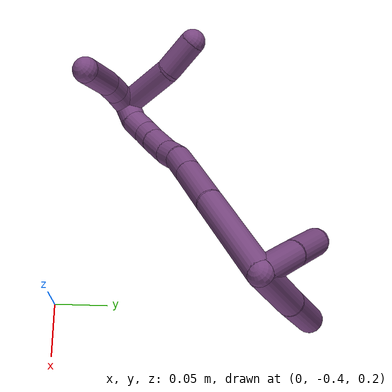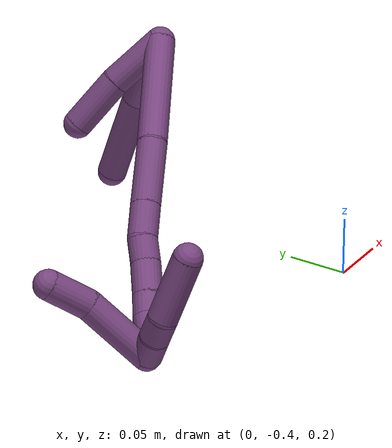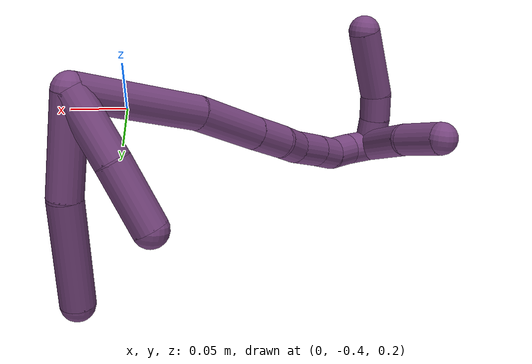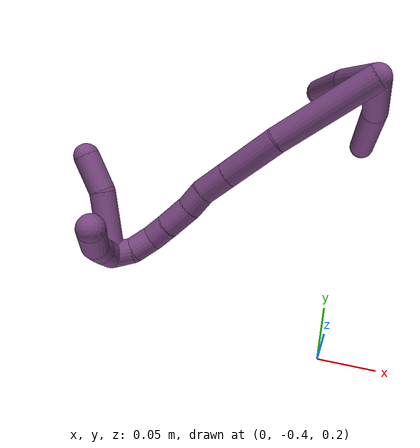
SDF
<sdf version="1.7">
 <world name="default">
  <model name="20">
   <static>0</static>
   <link name="20">
    <collision name="collision-cylinder-e_1_2_8">
     <pose>0.000431 -0.002257 -0.035427 3.07798 0.012152 0.377401</pose>
     <geometry><cylinder><radius>0.0125</radius><length>0.071003</length></cylinder></geometry>
     <surface>
      <friction><ode><mu>1.16</mu><mu2>1.16</mu2><slip1>0</slip1><slip2>0</slip2></ode></friction>
      <contact><ode><kp>1e+06</kp><kd>1</kd><max_vel>0</max_vel><min_depth>0.001</min_depth></ode></contact>
     </surface>
    </collision>
    <visual name="visual-cylinder-e_1_2_8">
     <pose>0.000431 -0.002257 -0.035427 3.07798 0.012152 0.377401</pose>
     <geometry><cylinder><radius>0.0125</radius><length>0.071003</length></cylinder></geometry>
     <material><ambient>0.478431 0.278431 0.509804 1</ambient></material>
    </visual>
    <collision name="collision-cylinder-e_2_8_6">
     <pose>-0.003652 -0.011763 -0.109418 2.95578 -0.114558 -1.10336</pose>
     <geometry><cylinder><radius>0.0125</radius><length>0.078997</length></cylinder></geometry>
     <surface>
      <friction><ode><mu>1.16</mu><mu2>1.16</mu2><slip1>0</slip1><slip2>0</slip2></ode></friction>
      <contact><ode><kp>1e+06</kp><kd>1</kd><max_vel>0</max_vel><min_depth>0.001</min_depth></ode></contact>
     </surface>
    </collision>
    <visual name="visual-cylinder-e_2_8_6">
     <pose>-0.003652 -0.011763 -0.109418 2.95578 -0.114558 -1.10336</pose>
     <geometry><cylinder><radius>0.0125</radius><length>0.078997</length></cylinder></geometry>
     <material><ambient>0.478431 0.278431 0.509804 1</ambient></material>
    </visual>
    <collision name="collision-cylinder-e_1_2_9">
     <pose>-0.015328 0.003104 -0.020252 -2.9895 -0.642301 2.69129</pose>
     <geometry><cylinder><radius>0.0125</radius><length>0.051176</length></cylinder></geometry>
     <surface>
      <friction><ode><mu>1.16</mu><mu2>1.16</mu2><slip1>0</slip1><slip2>0</slip2></ode></friction>
      <contact><ode><kp>1e+06</kp><kd>1</kd><max_vel>0</max_vel><min_depth>0.001</min_depth></ode></contact>
     </surface>
    </collision>
    <visual name="visual-cylinder-e_1_2_9">
     <pose>-0.015328 0.003104 -0.020252 -2.9895 -0.642301 2.69129</pose>
     <geometry><cylinder><radius>0.0125</radius><length>0.051176</length></cylinder></geometry>
     <material><ambient>0.478431 0.278431 0.509804 1</ambient></material>
    </visual>
    <collision name="collision-cylinder-e_2_9_5">
     <pose>-0.04417 0.006543 -0.060833 -3.12511 -0.586619 3.08704</pose>
     <geometry><cylinder><radius>0.0125</radius><length>0.048824</length></cylinder></geometry>
     <surface>
      <friction><ode><mu>1.16</mu><mu2>1.16</mu2><slip1>0</slip1><slip2>0</slip2></ode></friction>
      <contact><ode><kp>1e+06</kp><kd>1</kd><max_vel>0</max_vel><min_depth>0.001</min_depth></ode></contact>
     </surface>
    </collision>
    <visual name="visual-cylinder-e_2_9_5">
     <pose>-0.04417 0.006543 -0.060833 -3.12511 -0.586619 3.08704</pose>
     <geometry><cylinder><radius>0.0125</radius><length>0.048824</length></cylinder></geometry>
     <material><ambient>0.478431 0.278431 0.509804 1</ambient></material>
    </visual>
    <collision name="collision-cylinder-e_1_2_10">
     <pose>-0.036021 -0.033992 -0.009172 1.83436 -0.796814 -1.005</pose>
     <geometry><cylinder><radius>0.0125</radius><length>0.100739</length></cylinder></geometry>
     <surface>
      <friction><ode><mu>1.16</mu><mu2>1.16</mu2><slip1>0</slip1><slip2>0</slip2></ode></friction>
      <contact><ode><kp>1e+06</kp><kd>1</kd><max_vel>0</max_vel><min_depth>0.001</min_depth></ode></contact>
     </surface>
    </collision>
    <visual name="visual-cylinder-e_1_2_10">
     <pose>-0.036021 -0.033992 -0.009172 1.83436 -0.796814 -1.005</pose>
     <geometry><cylinder><radius>0.0125</radius><length>0.100739</length></cylinder></geometry>
     <material><ambient>0.478431 0.278431 0.509804 1</ambient></material>
    </visual>
    <collision name="collision-cylinder-e_2_10_11">
     <pose>-0.091335 -0.086709 -0.027074 2.00702 -0.751186 -1.10837</pose>
     <geometry><cylinder><radius>0.0125</radius><length>0.056536</length></cylinder></geometry>
     <surface>
      <friction><ode><mu>1.16</mu><mu2>1.16</mu2><slip1>0</slip1><slip2>0</slip2></ode></friction>
      <contact><ode><kp>1e+06</kp><kd>1</kd><max_vel>0</max_vel><min_depth>0.001</min_depth></ode></contact>
     </surface>
    </collision>
    <visual name="visual-cylinder-e_2_10_11">
     <pose>-0.091335 -0.086709 -0.027074 2.00702 -0.751186 -1.10837</pose>
     <geometry><cylinder><radius>0.0125</radius><length>0.056536</length></cylinder></geometry>
     <material><ambient>0.478431 0.278431 0.509804 1</ambient></material>
    </visual>
    <collision name="collision-cylinder-e_3_11_12">
     <pose>-0.120717 -0.115376 -0.040111 1.97966 -0.749857 -1.07997</pose>
     <geometry><cylinder><radius>0.0125</radius><length>0.029609</length></cylinder></geometry>
     <surface>
      <friction><ode><mu>1.16</mu><mu2>1.16</mu2><slip1>0</slip1><slip2>0</slip2></ode></friction>
      <contact><ode><kp>1e+06</kp><kd>1</kd><max_vel>0</max_vel><min_depth>0.001</min_depth></ode></contact>
     </surface>
    </collision>
    <visual name="visual-cylinder-e_3_11_12">
     <pose>-0.120717 -0.115376 -0.040111 1.97966 -0.749857 -1.07997</pose>
     <geometry><cylinder><radius>0.0125</radius><length>0.029609</length></cylinder></geometry>
     <material><ambient>0.478431 0.278431 0.509804 1</ambient></material>
    </visual>
    <collision name="collision-cylinder-e_4_12_13">
     <pose>-0.13609 -0.133933 -0.04772 1.93673 -0.519947 -0.738118</pose>
     <geometry><cylinder><radius>0.0125</radius><length>0.021264</length></cylinder></geometry>
     <surface>
      <friction><ode><mu>1.16</mu><mu2>1.16</mu2><slip1>0</slip1><slip2>0</slip2></ode></friction>
      <contact><ode><kp>1e+06</kp><kd>1</kd><max_vel>0</max_vel><min_depth>0.001</min_depth></ode></contact>
     </surface>
    </collision>
    <visual name="visual-cylinder-e_4_12_13">
     <pose>-0.13609 -0.133933 -0.04772 1.93673 -0.519947 -0.738118</pose>
     <geometry><cylinder><radius>0.0125</radius><length>0.021264</length></cylinder></geometry>
     <material><ambient>0.478431 0.278431 0.509804 1</ambient></material>
    </visual>
    <collision name="collision-cylinder-e_5_13_14">
     <pose>-0.1501 -0.15356 -0.053925 1.82861 -0.653955 -0.829303</pose>
     <geometry><cylinder><radius>0.0125</radius><length>0.028695</length></cylinder></geometry>
     <surface>
      <friction><ode><mu>1.16</mu><mu2>1.16</mu2><slip1>0</slip1><slip2>0</slip2></ode></friction>
      <contact><ode><kp>1e+06</kp><kd>1</kd><max_vel>0</max_vel><min_depth>0.001</min_depth></ode></contact>
     </surface>
    </collision>
    <visual name="visual-cylinder-e_5_13_14">
     <pose>-0.1501 -0.15356 -0.053925 1.82861 -0.653955 -0.829303</pose>
     <geometry><cylinder><radius>0.0125</radius><length>0.028695</length></cylinder></geometry>
     <material><ambient>0.478431 0.278431 0.509804 1</ambient></material>
    </visual>
    <collision name="collision-cylinder-e_6_14_15">
     <pose>-0.165223 -0.172025 -0.059098 1.86634 -0.687278 -0.899914</pose>
     <geometry><cylinder><radius>0.0125</radius><length>0.02016</length></cylinder></geometry>
     <surface>
      <friction><ode><mu>1.16</mu><mu2>1.16</mu2><slip1>0</slip1><slip2>0</slip2></ode></friction>
      <contact><ode><kp>1e+06</kp><kd>1</kd><max_vel>0</max_vel><min_depth>0.001</min_depth></ode></contact>
     </surface>
    </collision>
    <visual name="visual-cylinder-e_6_14_15">
     <pose>-0.165223 -0.172025 -0.059098 1.86634 -0.687278 -0.899914</pose>
     <geometry><cylinder><radius>0.0125</radius><length>0.02016</length></cylinder></geometry>
     <material><ambient>0.478431 0.278431 0.509804 1</ambient></material>
    </visual>
    <collision name="collision-cylinder-e_7_15_16">
     <pose>-0.17868 -0.187762 -0.060487 1.46491 -0.703177 -0.637328</pose>
     <geometry><cylinder><radius>0.0125</radius><length>0.02184</length></cylinder></geometry>
     <surface>
      <friction><ode><mu>1.16</mu><mu2>1.16</mu2><slip1>0</slip1><slip2>0</slip2></ode></friction>
      <contact><ode><kp>1e+06</kp><kd>1</kd><max_vel>0</max_vel><min_depth>0.001</min_depth></ode></contact>
     </surface>
    </collision>
    <visual name="visual-cylinder-e_7_15_16">
     <pose>-0.17868 -0.187762 -0.060487 1.46491 -0.703177 -0.637328</pose>
     <geometry><cylinder><radius>0.0125</radius><length>0.02184</length></cylinder></geometry>
     <material><ambient>0.478431 0.278431 0.509804 1</ambient></material>
    </visual>
    <collision name="collision-cylinder-e_8_16_1">
     <pose>-0.194787 -0.2013 -0.058042 1.28147 -1.02583 -0.795192</pose>
     <geometry><cylinder><radius>0.0125</radius><length>0.021157</length></cylinder></geometry>
     <surface>
      <friction><ode><mu>1.16</mu><mu2>1.16</mu2><slip1>0</slip1><slip2>0</slip2></ode></friction>
      <contact><ode><kp>1e+06</kp><kd>1</kd><max_vel>0</max_vel><min_depth>0.001</min_depth></ode></contact>
     </surface>
    </collision>
    <visual name="visual-cylinder-e_8_16_1">
     <pose>-0.194787 -0.2013 -0.058042 1.28147 -1.02583 -0.795192</pose>
     <geometry><cylinder><radius>0.0125</radius><length>0.021157</length></cylinder></geometry>
     <material><ambient>0.478431 0.278431 0.509804 1</ambient></material>
    </visual>
    <collision name="collision-cylinder-e_1_1_17">
     <pose>-0.214705 -0.178889 -0.047051 -1.24243 -0.356081 0.256181</pose>
     <geometry><cylinder><radius>0.0125</radius><length>0.06237</length></cylinder></geometry>
     <surface>
      <friction><ode><mu>1.16</mu><mu2>1.16</mu2><slip1>0</slip1><slip2>0</slip2></ode></friction>
      <contact><ode><kp>1e+06</kp><kd>1</kd><max_vel>0</max_vel><min_depth>0.001</min_depth></ode></contact>
     </surface>
    </collision>
    <visual name="visual-cylinder-e_1_1_17">
     <pose>-0.214705 -0.178889 -0.047051 -1.24243 -0.356081 0.256181</pose>
     <geometry><cylinder><radius>0.0125</radius><length>0.06237</length></cylinder></geometry>
     <material><ambient>0.478431 0.278431 0.509804 1</ambient></material>
    </visual>
    <collision name="collision-cylinder-e_2_17_4">
     <pose>-0.237093 -0.137126 -0.032863 -1.24502 -0.658731 0.481143</pose>
     <geometry><cylinder><radius>0.0125</radius><length>0.03763</length></cylinder></geometry>
     <surface>
      <friction><ode><mu>1.16</mu><mu2>1.16</mu2><slip1>0</slip1><slip2>0</slip2></ode></friction>
      <contact><ode><kp>1e+06</kp><kd>1</kd><max_vel>0</max_vel><min_depth>0.001</min_depth></ode></contact>
     </surface>
    </collision>
    <visual name="visual-cylinder-e_2_17_4">
     <pose>-0.237093 -0.137126 -0.032863 -1.24502 -0.658731 0.481143</pose>
     <geometry><cylinder><radius>0.0125</radius><length>0.03763</length></cylinder></geometry>
     <material><ambient>0.478431 0.278431 0.509804 1</ambient></material>
    </visual>
    <collision name="collision-cylinder-e_1_1_18">
     <pose>-0.204421 -0.20576 -0.044757 -0.067844 -0.05 0.001697</pose>
     <geometry><cylinder><radius>0.0125</radius><length>0.023522</length></cylinder></geometry>
     <surface>
      <friction><ode><mu>1.16</mu><mu2>1.16</mu2><slip1>0</slip1><slip2>0</slip2></ode></friction>
      <contact><ode><kp>1e+06</kp><kd>1</kd><max_vel>0</max_vel><min_depth>0.001</min_depth></ode></contact>
     </surface>
    </collision>
    <visual name="visual-cylinder-e_1_1_18">
     <pose>-0.204421 -0.20576 -0.044757 -0.067844 -0.05 0.001697</pose>
     <geometry><cylinder><radius>0.0125</radius><length>0.023522</length></cylinder></geometry>
     <material><ambient>0.478431 0.278431 0.509804 1</ambient></material>
    </visual>
    <collision name="collision-cylinder-e_2_18_19">
     <pose>-0.204049 -0.203675 -0.022619 -0.123025 0.091194 -0.005621</pose>
     <geometry><cylinder><radius>0.0125</radius><length>0.021085</length></cylinder></geometry>
     <surface>
      <friction><ode><mu>1.16</mu><mu2>1.16</mu2><slip1>0</slip1><slip2>0</slip2></ode></friction>
      <contact><ode><kp>1e+06</kp><kd>1</kd><max_vel>0</max_vel><min_depth>0.001</min_depth></ode></contact>
     </surface>
    </collision>
    <visual name="visual-cylinder-e_2_18_19">
     <pose>-0.204049 -0.203675 -0.022619 -0.123025 0.091194 -0.005621</pose>
     <geometry><cylinder><radius>0.0125</radius><length>0.021085</length></cylinder></geometry>
     <material><ambient>0.478431 0.278431 0.509804 1</ambient></material>
    </visual>
    <collision name="collision-cylinder-e_3_19_3">
     <pose>-0.194747 -0.196014 0.01343 -0.243708 0.305922 -0.037754</pose>
     <geometry><cylinder><radius>0.0125</radius><length>0.055393</length></cylinder></geometry>
     <surface>
      <friction><ode><mu>1.16</mu><mu2>1.16</mu2><slip1>0</slip1><slip2>0</slip2></ode></friction>
      <contact><ode><kp>1e+06</kp><kd>1</kd><max_vel>0</max_vel><min_depth>0.001</min_depth></ode></contact>
     </surface>
    </collision>
    <visual name="visual-cylinder-e_3_19_3">
     <pose>-0.194747 -0.196014 0.01343 -0.243708 0.305922 -0.037754</pose>
     <geometry><cylinder><radius>0.0125</radius><length>0.055393</length></cylinder></geometry>
     <material><ambient>0.478431 0.278431 0.509804 1</ambient></material>
    </visual>
    <collision name="collision-sphere-3">
     <pose>-0.186406 -0.189641 0.03906 0 -0 0</pose>
     <geometry><sphere><radius>0.0125</radius></sphere></geometry>
     <surface>
      <friction><ode><mu>1.16</mu><mu2>1.16</mu2><slip1>0</slip1><slip2>0</slip2></ode></friction>
      <contact><ode><kp>1e+06</kp><kd>1</kd><max_vel>0</max_vel><min_depth>0.001</min_depth></ode></contact>
     </surface>
    </collision>
    <visual name="visual-sphere-3">
     <pose>-0.186406 -0.189641 0.03906 0 -0 0</pose>
     <geometry><sphere><radius>0.0125</radius></sphere></geometry>
     <material><ambient>0.478431 0.278431 0.509804 1</ambient></material>
    </visual>
    <collision name="collision-sphere-19">
     <pose>-0.203089 -0.202387 -0.0122 0 -0 0</pose>
     <geometry><sphere><radius>0.0125</radius></sphere></geometry>
     <surface>
      <friction><ode><mu>1.16</mu><mu2>1.16</mu2><slip1>0</slip1><slip2>0</slip2></ode></friction>
      <contact><ode><kp>1e+06</kp><kd>1</kd><max_vel>0</max_vel><min_depth>0.001</min_depth></ode></contact>
     </surface>
    </collision>
    <visual name="visual-sphere-19">
     <pose>-0.203089 -0.202387 -0.0122 0 -0 0</pose>
     <geometry><sphere><radius>0.0125</radius></sphere></geometry>
     <material><ambient>0.478431 0.278431 0.509804 1</ambient></material>
    </visual>
    <collision name="collision-sphere-10">
     <pose>-0.072042 -0.067984 -0.018345 0 -0 0</pose>
     <geometry><sphere><radius>0.0125</radius></sphere></geometry>
     <surface>
      <friction><ode><mu>1.16</mu><mu2>1.16</mu2><slip1>0</slip1><slip2>0</slip2></ode></friction>
      <contact><ode><kp>1e+06</kp><kd>1</kd><max_vel>0</max_vel><min_depth>0.001</min_depth></ode></contact>
     </surface>
    </collision>
    <visual name="visual-sphere-10">
     <pose>-0.072042 -0.067984 -0.018345 0 -0 0</pose>
     <geometry><sphere><radius>0.0125</radius></sphere></geometry>
     <material><ambient>0.478431 0.278431 0.509804 1</ambient></material>
    </visual>
    <collision name="collision-sphere-5">
     <pose>-0.057683 0.006878 -0.081161 0 -0 0</pose>
     <geometry><sphere><radius>0.0125</radius></sphere></geometry>
     <surface>
      <friction><ode><mu>1.16</mu><mu2>1.16</mu2><slip1>0</slip1><slip2>0</slip2></ode></friction>
      <contact><ode><kp>1e+06</kp><kd>1</kd><max_vel>0</max_vel><min_depth>0.001</min_depth></ode></contact>
     </surface>
    </collision>
    <visual name="visual-sphere-5">
     <pose>-0.057683 0.006878 -0.081161 0 -0 0</pose>
     <geometry><sphere><radius>0.0125</radius></sphere></geometry>
     <material><ambient>0.478431 0.278431 0.509804 1</ambient></material>
    </visual>
    <collision name="collision-sphere-6">
     <pose>-0.008167 -0.019012 -0.147982 0 -0 0</pose>
     <geometry><sphere><radius>0.0125</radius></sphere></geometry>
     <surface>
      <friction><ode><mu>1.16</mu><mu2>1.16</mu2><slip1>0</slip1><slip2>0</slip2></ode></friction>
      <contact><ode><kp>1e+06</kp><kd>1</kd><max_vel>0</max_vel><min_depth>0.001</min_depth></ode></contact>
     </surface>
    </collision>
    <visual name="visual-sphere-6">
     <pose>-0.008167 -0.019012 -0.147982 0 -0 0</pose>
     <geometry><sphere><radius>0.0125</radius></sphere></geometry>
     <material><ambient>0.478431 0.278431 0.509804 1</ambient></material>
    </visual>
    <collision name="collision-sphere-9">
     <pose>-0.030656 0.006208 -0.040505 0 -0 0</pose>
     <geometry><sphere><radius>0.0125</radius></sphere></geometry>
     <surface>
      <friction><ode><mu>1.16</mu><mu2>1.16</mu2><slip1>0</slip1><slip2>0</slip2></ode></friction>
      <contact><ode><kp>1e+06</kp><kd>1</kd><max_vel>0</max_vel><min_depth>0.001</min_depth></ode></contact>
     </surface>
    </collision>
    <visual name="visual-sphere-9">
     <pose>-0.030656 0.006208 -0.040505 0 -0 0</pose>
     <geometry><sphere><radius>0.0125</radius></sphere></geometry>
     <material><ambient>0.478431 0.278431 0.509804 1</ambient></material>
    </visual>
    <collision name="collision-sphere-2">
     <geometry><sphere><radius>0.0125</radius></sphere></geometry>
     <surface>
      <friction><ode><mu>1.16</mu><mu2>1.16</mu2><slip1>0</slip1><slip2>0</slip2></ode></friction>
      <contact><ode><kp>1e+06</kp><kd>1</kd><max_vel>0</max_vel><min_depth>0.001</min_depth></ode></contact>
     </surface>
    </collision>
    <visual name="visual-sphere-2">
     <geometry><sphere><radius>0.0125</radius></sphere></geometry>
     <material><ambient>0.478431 0.278431 0.509804 1</ambient></material>
    </visual>
    <collision name="collision-sphere-8">
     <pose>0.000863 -0.004513 -0.070854 0 -0 0</pose>
     <geometry><sphere><radius>0.0125</radius></sphere></geometry>
     <surface>
      <friction><ode><mu>1.16</mu><mu2>1.16</mu2><slip1>0</slip1><slip2>0</slip2></ode></friction>
      <contact><ode><kp>1e+06</kp><kd>1</kd><max_vel>0</max_vel><min_depth>0.001</min_depth></ode></contact>
     </surface>
    </collision>
    <visual name="visual-sphere-8">
     <pose>0.000863 -0.004513 -0.070854 0 -0 0</pose>
     <geometry><sphere><radius>0.0125</radius></sphere></geometry>
     <material><ambient>0.478431 0.278431 0.509804 1</ambient></material>
    </visual>
    <collision name="collision-sphere-11">
     <pose>-0.110628 -0.105435 -0.035804 0 -0 0</pose>
     <geometry><sphere><radius>0.0125</radius></sphere></geometry>
     <surface>
      <friction><ode><mu>1.16</mu><mu2>1.16</mu2><slip1>0</slip1><slip2>0</slip2></ode></friction>
      <contact><ode><kp>1e+06</kp><kd>1</kd><max_vel>0</max_vel><min_depth>0.001</min_depth></ode></contact>
     </surface>
    </collision>
    <visual name="visual-sphere-11">
     <pose>-0.110628 -0.105435 -0.035804 0 -0 0</pose>
     <geometry><sphere><radius>0.0125</radius></sphere></geometry>
     <material><ambient>0.478431 0.278431 0.509804 1</ambient></material>
    </visual>
    <collision name="collision-sphere-12">
     <pose>-0.130807 -0.125316 -0.044418 0 -0 0</pose>
     <geometry><sphere><radius>0.0125</radius></sphere></geometry>
     <surface>
      <friction><ode><mu>1.16</mu><mu2>1.16</mu2><slip1>0</slip1><slip2>0</slip2></ode></friction>
      <contact><ode><kp>1e+06</kp><kd>1</kd><max_vel>0</max_vel><min_depth>0.001</min_depth></ode></contact>
     </surface>
    </collision>
    <visual name="visual-sphere-12">
     <pose>-0.130807 -0.125316 -0.044418 0 -0 0</pose>
     <geometry><sphere><radius>0.0125</radius></sphere></geometry>
     <material><ambient>0.478431 0.278431 0.509804 1</ambient></material>
    </visual>
    <collision name="collision-sphere-13">
     <pose>-0.141372 -0.142549 -0.051021 0 -0 0</pose>
     <geometry><sphere><radius>0.0125</radius></sphere></geometry>
     <surface>
      <friction><ode><mu>1.16</mu><mu2>1.16</mu2><slip1>0</slip1><slip2>0</slip2></ode></friction>
      <contact><ode><kp>1e+06</kp><kd>1</kd><max_vel>0</max_vel><min_depth>0.001</min_depth></ode></contact>
     </surface>
    </collision>
    <visual name="visual-sphere-13">
     <pose>-0.141372 -0.142549 -0.051021 0 -0 0</pose>
     <geometry><sphere><radius>0.0125</radius></sphere></geometry>
     <material><ambient>0.478431 0.278431 0.509804 1</ambient></material>
    </visual>
    <collision name="collision-sphere-14">
     <pose>-0.158828 -0.164571 -0.056828 0 -0 0</pose>
     <geometry><sphere><radius>0.0125</radius></sphere></geometry>
     <surface>
      <friction><ode><mu>1.16</mu><mu2>1.16</mu2><slip1>0</slip1><slip2>0</slip2></ode></friction>
      <contact><ode><kp>1e+06</kp><kd>1</kd><max_vel>0</max_vel><min_depth>0.001</min_depth></ode></contact>
     </surface>
    </collision>
    <visual name="visual-sphere-14">
     <pose>-0.158828 -0.164571 -0.056828 0 -0 0</pose>
     <geometry><sphere><radius>0.0125</radius></sphere></geometry>
     <material><ambient>0.478431 0.278431 0.509804 1</ambient></material>
    </visual>
    <collision name="collision-sphere-15">
     <pose>-0.171618 -0.179478 -0.061367 0 -0 0</pose>
     <geometry><sphere><radius>0.0125</radius></sphere></geometry>
     <surface>
      <friction><ode><mu>1.16</mu><mu2>1.16</mu2><slip1>0</slip1><slip2>0</slip2></ode></friction>
      <contact><ode><kp>1e+06</kp><kd>1</kd><max_vel>0</max_vel><min_depth>0.001</min_depth></ode></contact>
     </surface>
    </collision>
    <visual name="visual-sphere-15">
     <pose>-0.171618 -0.179478 -0.061367 0 -0 0</pose>
     <geometry><sphere><radius>0.0125</radius></sphere></geometry>
     <material><ambient>0.478431 0.278431 0.509804 1</ambient></material>
    </visual>
    <collision name="collision-sphere-16">
     <pose>-0.185741 -0.196045 -0.059606 0 -0 0</pose>
     <geometry><sphere><radius>0.0125</radius></sphere></geometry>
     <surface>
      <friction><ode><mu>1.16</mu><mu2>1.16</mu2><slip1>0</slip1><slip2>0</slip2></ode></friction>
      <contact><ode><kp>1e+06</kp><kd>1</kd><max_vel>0</max_vel><min_depth>0.001</min_depth></ode></contact>
     </surface>
    </collision>
    <visual name="visual-sphere-16">
     <pose>-0.185741 -0.196045 -0.059606 0 -0 0</pose>
     <geometry><sphere><radius>0.0125</radius></sphere></geometry>
     <material><ambient>0.478431 0.278431 0.509804 1</ambient></material>
    </visual>
    <collision name="collision-sphere-1">
     <pose>-0.203833 -0.206556 -0.056477 0 -0 0</pose>
     <geometry><sphere><radius>0.0125</radius></sphere></geometry>
     <surface>
      <friction><ode><mu>1.16</mu><mu2>1.16</mu2><slip1>0</slip1><slip2>0</slip2></ode></friction>
      <contact><ode><kp>1e+06</kp><kd>1</kd><max_vel>0</max_vel><min_depth>0.001</min_depth></ode></contact>
     </surface>
    </collision>
    <visual name="visual-sphere-1">
     <pose>-0.203833 -0.206556 -0.056477 0 -0 0</pose>
     <geometry><sphere><radius>0.0125</radius></sphere></geometry>
     <material><ambient>0.478431 0.278431 0.509804 1</ambient></material>
    </visual>
    <collision name="collision-sphere-18">
     <pose>-0.205009 -0.204964 -0.033038 0 -0 0</pose>
     <geometry><sphere><radius>0.0125</radius></sphere></geometry>
     <surface>
      <friction><ode><mu>1.16</mu><mu2>1.16</mu2><slip1>0</slip1><slip2>0</slip2></ode></friction>
      <contact><ode><kp>1e+06</kp><kd>1</kd><max_vel>0</max_vel><min_depth>0.001</min_depth></ode></contact>
     </surface>
    </collision>
    <visual name="visual-sphere-18">
     <pose>-0.205009 -0.204964 -0.033038 0 -0 0</pose>
     <geometry><sphere><radius>0.0125</radius></sphere></geometry>
     <material><ambient>0.478431 0.278431 0.509804 1</ambient></material>
    </visual>
    <collision name="collision-sphere-17">
     <pose>-0.225576 -0.151222 -0.037625 0 -0 0</pose>
     <geometry><sphere><radius>0.0125</radius></sphere></geometry>
     <surface>
      <friction><ode><mu>1.16</mu><mu2>1.16</mu2><slip1>0</slip1><slip2>0</slip2></ode></friction>
      <contact><ode><kp>1e+06</kp><kd>1</kd><max_vel>0</max_vel><min_depth>0.001</min_depth></ode></contact>
     </surface>
    </collision>
    <visual name="visual-sphere-17">
     <pose>-0.225576 -0.151222 -0.037625 0 -0 0</pose>
     <geometry><sphere><radius>0.0125</radius></sphere></geometry>
     <material><ambient>0.478431 0.278431 0.509804 1</ambient></material>
    </visual>
    <collision name="collision-sphere-4">
     <pose>-0.24861 -0.12303 -0.028101 0 -0 0</pose>
     <geometry><sphere><radius>0.0125</radius></sphere></geometry>
     <surface>
      <friction><ode><mu>1.16</mu><mu2>1.16</mu2><slip1>0</slip1><slip2>0</slip2></ode></friction>
      <contact><ode><kp>1e+06</kp><kd>1</kd><max_vel>0</max_vel><min_depth>0.001</min_depth></ode></contact>
     </surface>
    </collision>
    <visual name="visual-sphere-4">
     <pose>-0.24861 -0.12303 -0.028101 0 -0 0</pose>
     <geometry><sphere><radius>0.0125</radius></sphere></geometry>
     <material><ambient>0.478431 0.278431 0.509804 1</ambient></material>
    </visual>
    <inertial>
     <pose>-0.101776 -0.090327 -0.04009 0 -0 0</pose>
     <mass>0.75</mass>
     <inertia>
      <ixx>1.1e-05</ixx>
      <ixy>0</ixy>
      <ixz>0</ixz>
      <iyy>-3.8e-05</iyy>
      <iyz>0</iyz>
      <izz>0.000157</izz>
     </inertia>
    </inertial>
   </link>
   <pose>0.008323 -0.215785 0.363577 0.503575 -0.045142 -0.141836</pose>
  </model>
 </world>
</sdf>
